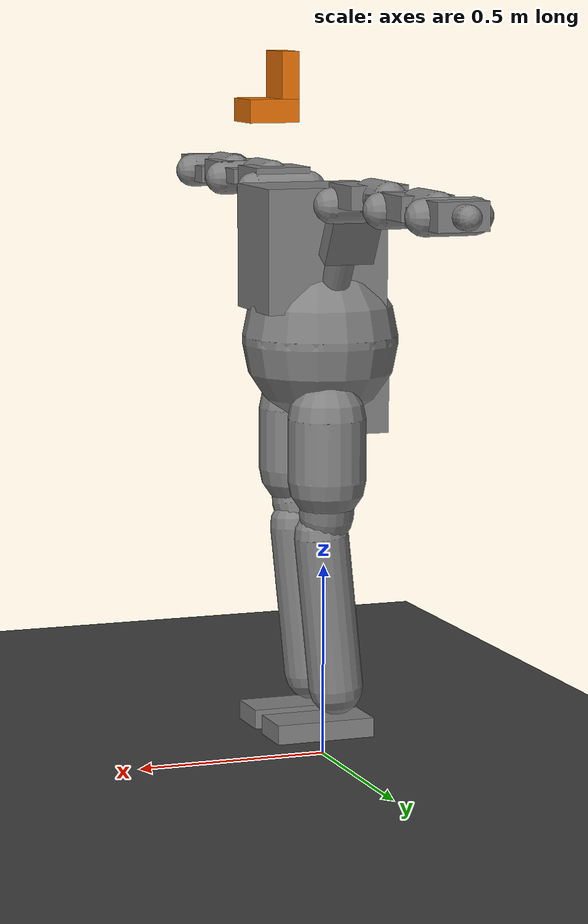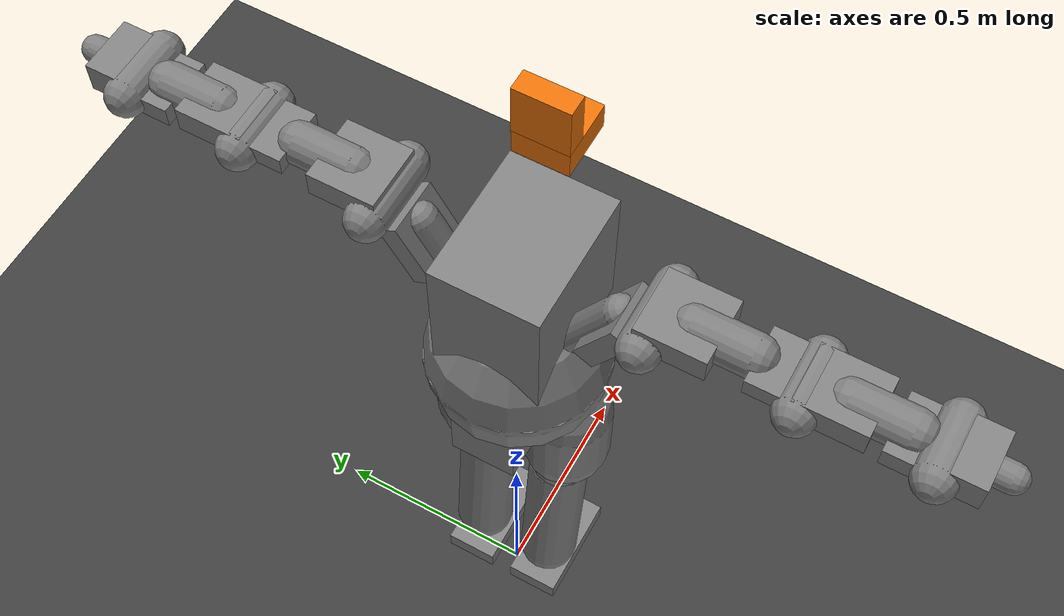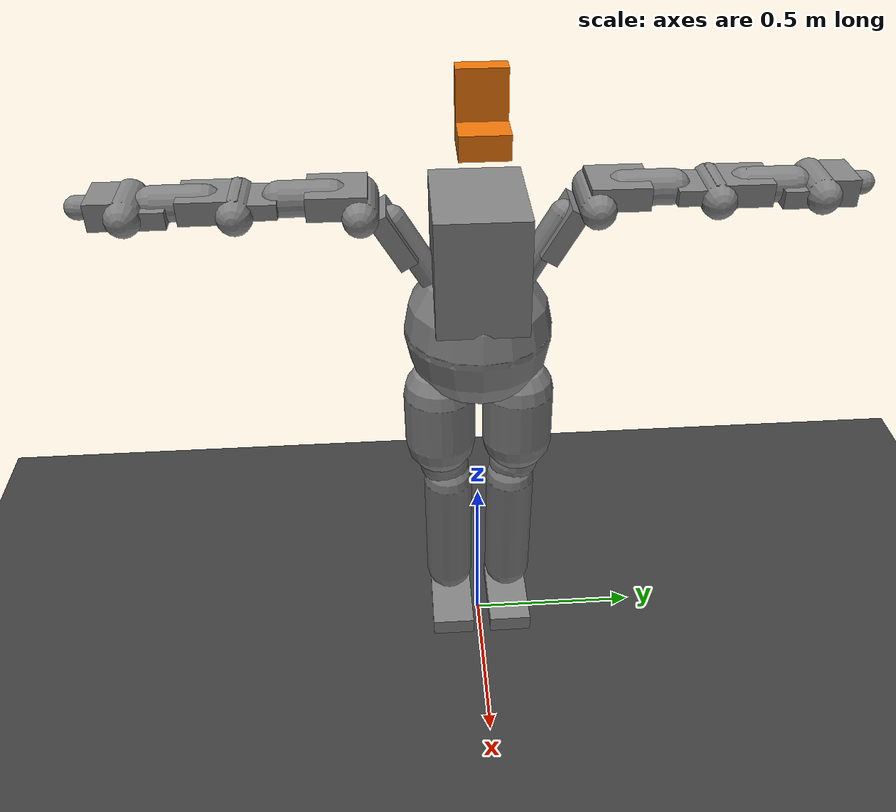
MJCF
<!-- The mjcf model for AMP -->
<!-- Contact us : motor_moon94@korea.ac.kr -->
<!-- degree information : radian to angle -->
<mujoco model="Atlas RILAB for AMP">
	<compiler angle="radian" meshdir="Meshes/"/>
	<statistic extent="2" center="0 0 1"/>
	<option timestep="0.001"/>
	<default>
		<motor ctrlrange="-.95 .95"/>
		<site type="sphere" size="0.005"/>
		<joint limited="true" damping="20"/>
		<geom contype="0" conaffinity="1" friction="0.7 0.1 0.1" margin="0.001" type="mesh" />
		<default class="body">
			<geom type="capsule" condim="1" friction="1.0 0.05 0.05" solimp=".9 .99 .003" solref=".015 1"/>
			<joint type="hinge" damping="0.1" stiffness="5" armature=".007" limited="true" solimplimit="0 .99 .01"/>
			<site size=".04" group="3"/>
			<default class="force-torque">
				<site type="box" size=".01 .01 .02" rgba="1 0 0 1" />
			</default>
			<default class="touch">
				<site type="capsule" rgba="0 0 1 .3"/>
			</default>
    	</default>
	</default>
	<asset>
		<mesh name="pelvis"         file="pelvis.stl"/>
		<mesh name="ltorso"         file="ltorso.stl"/>
		<mesh name="mtorso"         file="mtorso.stl"/>
		<mesh name="utorso"         file="utorso.stl"/>
		<mesh name="l_clav"         file="l_clav.stl"/>
		<mesh name="l_scap"         file="l_scap.stl"/>
		<mesh name="l_uarm"         file="l_uarm.stl"/>
		<mesh name="l_larm"         file="l_larm.stl"/>
		<mesh name="l_farm"         file="l_farm.stl"/>
		<mesh name="l_hand"			file="l_hand.stl"/>
		<mesh name="head"           file="head.stl"/>
		<mesh name="head_camera"    file="head_camera.stl"/>
		<mesh name="r_clav"         file="r_clav.stl"/>
		<mesh name="r_scap"         file="r_scap.stl"/>
		<mesh name="r_uarm"         file="r_uarm.stl"/>
		<mesh name="r_larm"         file="r_larm.stl"/>
		<mesh name="r_farm"         file="r_farm.stl"/>
		<mesh name="r_hand"         file="r_hand.stl"/>
		<mesh name="l_uglut"        file="l_uglut.stl"/>
		<mesh name="l_lglut"        file="l_lglut.stl"/>
		<mesh name="l_uleg"         file="l_uleg.stl"/>
		<mesh name="l_lleg"         file="l_lleg.stl"/>
		<mesh name="l_talus"        file="l_talus.stl"/>
		<mesh name="l_foot"         file="l_foot.stl"/>
		<mesh name="r_uglut"        file="r_uglut.stl"/>
		<mesh name="r_lglut"        file="r_lglut.stl"/>
		<mesh name="r_uleg"         file="r_uleg.stl"/>
		<mesh name="r_lleg"         file="r_lleg.stl"/>
		<mesh name="r_talus"        file="r_talus.stl"/>
		<mesh name="r_foot"         file="r_foot.stl"/>

		<texture name="groundplane" type="2d" builtin="checker" rgb1=".25 .26 .25"
			rgb2=".22 .22 .22" width="100" height="100" mark="none" markrgb=".8 .8 .8"/>
		<material name="MatGnd" texture="groundplane"  texrepeat="20 20" specular="1" shininess=".3" reflectance="0.00001" rgba="1 1 1 1"/>
	</asset>
	<worldbody>
		<!-- GROUND -->
		<geom name="floor" type="plane" pos="0 0 0" size="10 10 1" conaffinity="1" contype="1" material="MatGnd"/>
		<light directional="true" cutoff="60" exponent="1" diffuse="1 1 1" specular=".1 .1 .1" pos="1 1 1.5" dir="-1 -1 -1.3"/>
		<body name="pelvis" pos="0 0 1" childclass="body">
			<freejoint name="root"/>
			<site name="root" class="force-torque"/>
			<geom type="capsule" pos="0.01 0 0.09" size="0.2 0.01" />
			<site name="pelvis" class="touch" type="capsule" pos="0.01 0 0.09" size="0.2 0.01" />
			<geom type="box" pos="-0.1 0 -0.05" size="0.05 0.075 0.1" />
			<site name="upper_waist" class="touch" type="box" pos="-0.1 0 -0.05" size="0.05 0.075 0.1" />
			<body name="ltorso" pos="-0.0125 0 0" >
				<inertial pos="-0.011298 -0.000003 0.074684" quat="0.498101 0.498096 -0.501893 0.501896" mass="1.62729" diaginertia="0.109733 0.064662 0.050298" />
				<joint name="back_lbz" type="hinge" pos="0 0 0" axis="0 0 1" range="-0.610865 0.610865" damping="35" stiffness="0"/>
				<geom name="ltorso" type="sphere" pos="0 0 0" size="0.01"/>
				<body name="mtorso" pos="0 0 0.09" >
					<joint name="back_mby" type="hinge" pos="0 0 0" axis="0 1 0" range="-1.2 1.28" damping="35" stiffness="0"/>
					<geom name="mtorso" type="sphere" pos="0 0 0" size="0.01"/>
					<body name="utorso" pos="0 0 0.05"   user="-6006">
						<joint name="back_ubx" type="hinge" pos="0 0 0" axis="1 0 0" range="-0.790809 0.790809" damping="35" stiffness="0"/>
						<geom type="box" pos="0.0446 0 0.1869" size="0.1594 0.12 0.1581" />
						<site name="torso" class="touch" type="box" pos="0.0446 0 0.1869" size="0.1594 0.12 0.1581" />
						<geom type="capsule" pos="0.024 0.16 0.18" quat="0.965926 -0.258820 0 0" size="0.0363 0.111875"/>
						<geom type="capsule" pos="0.024 -0.16 0.18" quat="0.965926 0.258820 0 0" size="0.0363 0.111875"/>

						<body name="head" pos="0.21672 0 0.53796"  user="-6001">
							<joint name="neck_ay" type="hinge" pos="0 0 0" axis="0 1 0" range="-0.610865 1.134464" damping="2" stiffness="0"/>
							<geom type="box" pos="-0.0503 0 -0.00195" size="0.06555 0.06 0.02955" rgba="0.9098 0.44314 0.031373 1" />
							<geom type="box" pos="-0.093 0 0.0868" size="0.0234 0.06 0.0592" rgba="0.9098 0.44314 0.031373 1" />
							<site name="head" class="touch" type="box" pos="-0.093 0 0.0868" size="0.0234 0.06 0.0592" rgba="0.9098 0.44314 0.031373 1" />
						</body>
						<body name="r_clav" pos="0.024 -0.221 0.289">
							<joint name="r_arm_usy" type="hinge" pos="0 0 0" axis="0 0.500000 -0.866025" range="-1.9635 1.9635" user="0 0.5" stiffness="0"/>
							<geom type="capsule" pos="0 -0.0697 0.0261" quat="0.707107 0 0.707107 0" size="0.045 0.07625" />
							<geom type="box" pos="-0.005 0.0074 -0.0538" quat="0.866025 -0.500001 0 0" size="0.065 0.075 0.025" />
							<body name="r_scap" pos="0 -0.075 0.036" >
								<joint name="r_arm_shx" type="hinge" pos="0 0 0" axis="1 0 0" range="-1.74533 1.39626" user="0 1" stiffness="0"/>
								<geom type="capsule" pos="0.001 -0.12651 0.01521" quat="0.707107 0.707107 0 0" size="0.045 0.0625" />
								<geom type="box" pos="0.001 -0.05 0.016" size="0.075 0.075 0.03" />
								<site name="right_upper_arm" class="touch" type="box" pos="0.001 -0.05 0.016" size="0.075 0.075 0.03" />
								<body name="r_uarm" pos="0 -0.185 0" >
									<joint name="r_arm_ely" type="hinge" pos="0 0 0" axis="0 1 0" range="0 3.14159" user="0 1.5" stiffness="0"/>
									<geom type="capsule" pos="0.001 -0.111 0" quat="0.707105 0 0.707108 0" size="0.045 0.0625" />
									<geom type="box" pos="0.001 -0.043 0.01" quat="0.707107 0 0.707107 0" size="0.02 0.035 0.065" />
									<site name="right_lower_arm" class="touch" type="box" pos="0.001 -0.043 0.01" quat="0.707107 0 0.707107 0" size="0.02 0.035 0.065" />
									<body name="r_larm" pos="0 -0.121 0.013" >
										<joint name="r_arm_elx" type="hinge" pos="0 0 0" axis="1 0 0" range="-2.35619 0" user="0 -1" stiffness="0"/>
										<geom type="capsule" pos="0.001 -0.127 0" quat="0.707107 0.707107 0 0" size="0.045 0.0625" />
										<geom type="box" pos="0.001 -0.051 0" size="0.0675 0.075 0.03" />
										<body name="r_farm" pos="0 -0.188 -0.013" >
											<joint name="r_arm_uwy" type="hinge" pos="0 0 0" axis="0 1 0" range="-1.571 1.571" stiffness="0" />
											<geom type="capsule" pos="0 -0.065 0.004" quat="0.707105 0 0.707108 0" size="0.045 0.0625" />
											<geom type="box" pos="0.001 -0.015 -0.002" size="0.0675 0.05 0.0225" />
											<body name="r_hand" pos="0 -0.058 0" >
												<joint name="r_arm_mwx" type="hinge" pos="0 0 0" axis="1 0 0" range="-1.571 0.436" user="9001" stiffness="0"/>
												<geom type="capsule" pos="0.001 -0.1 0.01" quat="0.707107 0.707107 0 0" size="0.03 0.025" />
												<geom type="box" pos="0.001 -0.05 0.01" size="0.065 0.045 0.035" />
												<site name="right_hand" class="touch" type="box" pos="0.001 -0.05 0.01" size="0.065 0.045 0.035" />
											</body>
										</body>
									</body>
								</body>
							</body>
						</body>

						<body name="l_clav" pos="0.024 0.221 0.289">
							<joint name="l_arm_usy" type="hinge" pos="0 0 0" axis="0 0.500000 0.866025" range="-1.9635 1.9635" user="0 0.5" stiffness="0"/>
							<geom type="capsule" pos="0 0.0697 0.0261" quat="0.707107 0 0.707107 0" size="0.045 0.07625"/>
							<geom type="box" pos="-0.005 -0.0074 -0.0538" quat="0.866025 0.500001 0 0" size="0.065 0.075 0.025"/>
							<body name="l_scap" pos="0 0.075 0.036" >
								<joint name="l_arm_shx" type="hinge" pos="0 0 0" axis="1 0 0" range="-1.39626 1.74533" user="0 -1" stiffness="0"/>
								<geom type="capsule" pos="0.001 0.12651 0.01521" quat="0.707107 0.707107 0 0" size="0.045 0.0625" />
								<geom type="box" pos="0.001 0.05 0.016" size="0.075 0.075 0.03" />
								<site name="left_upper_arm" class="touch" type="box" pos="0.001 0.05 0.016" size="0.075 0.075 0.03" />
								<body name="l_uarm" pos="0 0.185 0" >
									<joint name="l_arm_ely" type="hinge" pos="0 0 0" axis="0 1 0" range="0 3.14159" user="0 1.5" stiffness="0"/>
									<geom type="capsule" pos="0.001 0.111 0" quat="0.707105 0 0.707108 0" size="0.045 0.0625" />
									<geom type="box" pos="0.001 0.043 0.01" quat="0.707107 0 0.707107 0" size="0.02 0.035 0.065" />
									<site name="left_lower_arm" class="touch" type="box" pos="0.001 0.043 0.01" quat="0.707107 0 0.707107 0" size="0.02 0.035 0.065" />
									<body name="l_larm" pos="0 0.121 0.013" >
										<joint name="l_arm_elx" type="hinge" pos="0 0 0" axis="1 0 0" range="0 2.35619" user="0 1" stiffness="0"/>
										<geom type="capsule" pos="0.001 0.127 0" quat="0.707107 0.707107 0 0" size="0.045 0.0625" />
										<geom type="box" pos="0.001 0.051 0" size="0.0675 0.075 0.03" />
										<body name="l_farm" pos="0 0.188 -0.013" >
											<joint name="l_arm_uwy" type="hinge" pos="0 0 0" axis="0 1 0" range="-1.571 1.571" stiffness="0"/>
											<geom type="capsule" pos="0 0.065 0.004" quat="0.707105 0 0.707108 0" size="0.045 0.0625" />
											<geom type="box" pos="0.001 0.015 -0.002" size="0.0675 0.05 0.0225" />
											<body name="l_hand" pos="0 0.058 0" >
												<joint name="l_arm_mwx" type="hinge" pos="0 0 0" axis="1 0 0" range="-0.436 1.571" user="9001" stiffness="0"/>
												<geom type="capsule" pos="0.001 0.1 0.01" quat="0.707107 0.707107 0 0" size="0.03 0.025" />
												<geom type="box" pos="0.001 0.05 0.01" size="0.065 0.045 0.035"/>
												<site name="left_hand" class="touch" type="box" pos="0.001 0.05 0.01" size="0.065 0.045 0.035"/>
											</body>
										</body>
									</body>
								</body>
							</body>
						</body>

					</body>
				</body>
			</body>
			<body name="r_uglut" pos="0 -0.089 0" >
				<joint name="r_leg_uhz" type="hinge" pos="0 0 0" axis="0 0 1" range="-1.14 0.32" />
				<geom type="capsule" pos="0 0 0" quat="0.707107 0 0.707107 0" size="0.019096 0.039198" />
				<body name="r_lglut" pos="0 0 0" >
					<joint name="r_leg_mhx" type="hinge" pos="0 0 0" axis="1 0 0" range="-0.495 0.47" />
					<geom type="capsule" pos="0.049968 -0.022488 -0.050117" quat="0.707107 0.707107 0 0" size="0.020097 0.030153" />
					<geom type="capsule" pos="0 0 0" quat="0.707107 0 0.707107 0" size="0.02 0.06" />
					<body name="r_uleg" pos="0.05 0 -0.05" >
						<site name="right_hip" class="force-torque"/>
						<joint name="r_leg_lhy" type="hinge" pos="0 0 0" axis="0 1 0" range="-1.745 0.524"/>
						<geom type="capsule" pos="-0.0179 -0.02085 -0.13" size="0.1 0.08" />
						<site name="right_thigh" class="touch" type="capsule" pos="-0.0179 -0.02085 -0.13" size="0.1 0.08" />
						<geom type="capsule" pos="-0.02 -0.03 -0.23" quat="0.992198 0.124675 0 0" size="0.07 0.075" />
						<body name="r_lleg" pos="-0.05 0 -0.374" >
							<site name="right_knee" class="force-torque"/>
							<joint name="r_leg_kny" type="hinge" pos="0 0 0" axis="0 1 0" range="0 2.45"/>
							<geom type="capsule" pos="0.02 -0.00295 -0.18" quat="0.998750 0 0.049979 0" size="0.07 0.2" />
							<site name="right_shin" class="touch" type="capsule" pos="0.02 -0.00295 -0.18" quat="0.998750 0 0.049979 0" size="0.07 0.2" />
							<body name="r_talus" pos="0 0 -0.422" >
								<site name="right_ankle" class="force-torque"/>
								<inertial pos="0 0 0" quat="0 0.707107 0 0.707107" mass="0.867" diaginertia="0.004007 0.003504 0.001" />
								<joint name="r_leg_uay" type="hinge" pos="0 0 0" axis="0 1 0" range="-0.698 0.698" />
								<geom type="capsule" pos="0 0 0" quat="0.707107 0 0.707107 0" size="0.010181 0.014771" />
								<geom type="capsule" pos="0 0 0" quat="0.707107 0.707107 0 0" size="0.010348 0.005030" />
								<body name="r_foot" pos="0 0 0"  user ="-6008">
									<joint name="r_leg_lax" type="hinge" pos="0 0 0" axis="1 0 0" range="-0.436 0.436" />
									<geom type="box" pos="0.048 0 -0.056119" size="0.13 0.062443 0.025" />
									<site name="right_foot" class="touch" type="box" pos="0.048 0 -0.056119" size="0.13 0.062443 0.025" />
								</body>
							</body>
						</body>
					</body>
				</body>
			</body>
			<body name="l_uglut" pos="0 0.089 0" >
				<joint name="l_leg_uhz" type="hinge" pos="0 0 0" axis="0 0 1" range="-0.32 1.14" />
				<geom type="capsule" pos="0 0 0" quat="0.707107 0 0.707107 0" size="0.019096 0.039198" />
				<body name="l_lglut" pos="0 0 0" >
					<joint name="l_leg_mhx" type="hinge" pos="0 0 0" axis="1 0 0" range="-0.47 0.495" />
					<geom type="capsule" pos="0.049968 0.022488 -0.050117" quat="0.707107 0.707107 0 0" size="0.020097 0.030153" />
					<geom type="capsule" pos="0 0 0" quat="0.707107 0 0.707107 0" size="0.02 0.06" />
					<body name="l_uleg" pos="0.05 0 -0.05" >
						<site name="left_hip" class="force-torque"/>
						<inertial pos="0 0 -0.21" quat="0.707107 0 0 0.707107" mass="7.227" diaginertia="0.047502 0.047502 0.047502" />
						<joint name="l_leg_lhy" type="hinge" pos="0 0 0" axis="0 1 0" range="-1.75 0.524"/>
						<geom type="capsule" pos="-0.0179 0.02085 -0.13" size="0.1 0.08"/>
						<site name="left_thigh" class="touch" type="capsule" pos="-0.0179 0.02085 -0.13" size="0.1 0.08"/>
						<geom type="capsule" pos="-0.02 0.03 -0.23" quat="0.992198 -0.124675 0 0" size="0.07 0.075" />
						<body name="l_lleg" pos="-0.05 0 -0.374" >
							<site name="left_knee" class="force-torque"/>
							<joint name="l_leg_kny" type="hinge" pos="0 0 0" axis="0 1 0" range="0 2.45"/>
							<geom type="capsule" pos="0.02 0.00295 -0.18" quat="0.998750 0 0.049979 0" size="0.07 0.2" />
							<site name="left_shin" class="touch" type="capsule" pos="0.02 0.00295 -0.18" quat="0.998750 0 0.049979 0" size="0.07 0.2" />
							<body name="l_talus" pos="0 0 -0.422" >
								<site name="left_ankle" class="force-torque"/>
								<joint name="l_leg_uay" type="hinge" pos="0 0 0" axis="0 1 0" range="-0.698 0.698" />
								<geom type="capsule" pos="0 0 0" quat="0.707107 0 0.707107 0" size="0.010181 0.014771" />
								<geom type="capsule" pos="0 0 0" quat="0.707107 0.707107 0 0" size="0.010348 0.005030" />
								<body name="l_foot" pos="0 0 0"  user ="-6007">
									<joint name="l_leg_lax" type="hinge" pos="0 0 0" axis="1 0 0" range="-0.436 0.436" />
									<geom type="box" pos="0.048 0 -0.056119" size="0.13 0.062443 0.025" />
									<site name="left_foot" class="touch" type="box" pos="0.048 0 -0.056119" size="0.13 0.062443 0.025" />
								</body>
							</body>
						</body>
					</body>
				</body>
			</body>
		</body>
	</worldbody>
	<actuator>
		<!-- torso -->
		<motor name="back_lbz_actuator" joint="back_lbz" gear="124"/>
		<motor name="back_mby_actuator" joint="back_mby" gear="206"/>
		<motor name="back_ubx_actuator" joint="back_ubx" gear="95"/>

		<!-- left arm -->
		<motor name="l_arm_usy_actuator" joint="l_arm_usy" gear="212"/>
		<motor name="l_arm_shx_actuator" joint="l_arm_shx" gear="170"/>
		<motor name="l_arm_ely_actuator" joint="l_arm_ely" gear="114"/>
		<motor name="l_arm_elx_actuator" joint="l_arm_elx" gear="114"/>
		<motor name="l_arm_uwy_actuator" joint="l_arm_uwy" gear="114"/>
		<motor name="l_arm_mwx_actuator" joint="l_arm_mwx" gear="60"/>

		<!-- head -->
		<motor name="neck_ay_actuator" 	 joint="neck_ay" 	gear="5"/>

		<!-- right arm -->
		<motor name="r_arm_usy_actuator" joint="r_arm_usy" gear="212"/>
		<motor name="r_arm_shx_actuator" joint="r_arm_shx" gear="170"/>
		<motor name="r_arm_ely_actuator" joint="r_arm_ely" gear="114"/>
		<motor name="r_arm_elx_actuator" joint="r_arm_elx" gear="114"/>
		<motor name="r_arm_uwy_actuator" joint="r_arm_uwy" gear="114"/>
		<motor name="r_arm_mwx_actuator" joint="r_arm_mwx" gear="60"/>

		<!-- left leg -->
		<motor name="l_leg_uhz_actuator" joint="l_leg_uhz" gear="110"/>
		<motor name="l_leg_mhx_actuator" joint="l_leg_mhx" gear="180"/>
		<motor name="l_leg_lhy_actuator" joint="l_leg_lhy" gear="260"/>
		<motor name="l_leg_kny_actuator" joint="l_leg_kny" gear="400"/>
		<motor name="l_leg_uay_actuator" joint="l_leg_uay" gear="220"/>
		<motor name="l_leg_lax_actuator" joint="l_leg_lax" gear="90"/>

		<!-- right leg -->
		<motor name="r_leg_uhz_actuator" joint="r_leg_uhz" gear="110"/>
		<motor name="r_leg_mhx_actuator" joint="r_leg_mhx" gear="180"/>
		<motor name="r_leg_lhy_actuator" joint="r_leg_lhy" gear="260"/>
		<motor name="r_leg_kny_actuator" joint="r_leg_kny" gear="400"/>
		<motor name="r_leg_uay_actuator" joint="r_leg_uay" gear="220"/>
		<motor name="r_leg_lax_actuator" joint="r_leg_lax" gear="90"/>
	</actuator>

	<sensor>
		<subtreelinvel name="pelvis_subtreelinvel" body="pelvis"/>
		<accelerometer name="root_accel"    site="root"/>
		<velocimeter name="root_vel"        site="root"/>
		<gyro name="root_gyro"              site="root"/>

		<force name="left_ankle_force"       site="left_ankle"/>
		<force name="right_ankle_force"      site="right_ankle"/>
		<force name="left_knee_force"        site="left_knee"/>
		<force name="right_knee_force"       site="right_knee"/>
		<force name="left_hip_force"         site="left_hip"/>
		<force name="right_hip_force"        site="right_hip"/>

		<torque name="left_ankle_torque"     site="left_ankle"/>
		<torque name="right_ankle_torque"    site="right_ankle"/>
		<torque name="left_knee_torque"      site="left_knee"/>
		<torque name="right_knee_torque"     site="right_knee"/>
		<torque name="left_hip_torque"       site="left_hip"/>
		<torque name="right_hip_torque"      site="right_hip"/>

		<touch name="pelvis_touch"           site="pelvis"/>
		<touch name="upper_waist_touch"      site="upper_waist"/>
		<touch name="torso_touch"            site="torso"/>
		<touch name="head_touch"             site="head"/>
		<touch name="right_upper_arm_touch"  site="right_upper_arm"/>
		<touch name="right_lower_arm_touch"  site="right_lower_arm"/>
		<touch name="right_hand_touch"       site="right_hand"/>
		<touch name="left_upper_arm_touch"   site="left_upper_arm"/>
		<touch name="left_lower_arm_touch"   site="left_lower_arm"/>
		<touch name="left_hand_touch"        site="left_hand"/>
		<touch name="right_thigh_touch"      site="right_thigh"/>
		<touch name="right_shin_touch"       site="right_shin"/>
		<touch name="right_foot_touch"       site="right_foot"/>
		<touch name="left_thigh_touch"       site="left_thigh"/>
		<touch name="left_shin_touch"        site="left_shin"/>
		<touch name="left_foot_touch"        site="left_foot"/>
	</sensor>

</mujoco>
